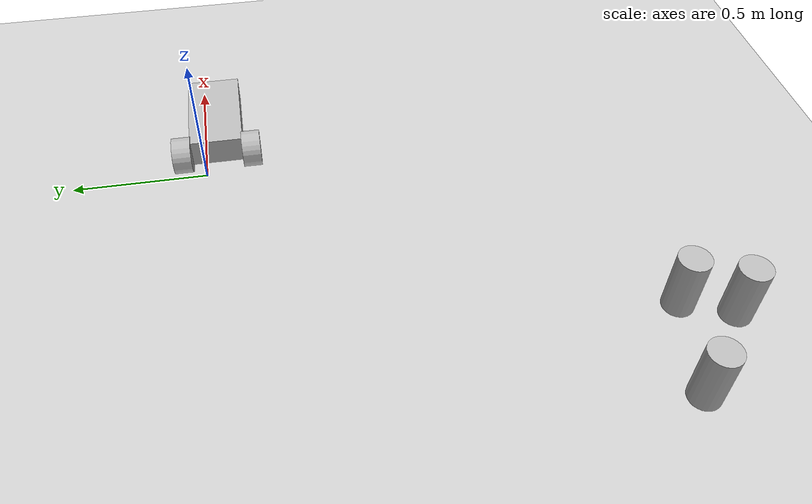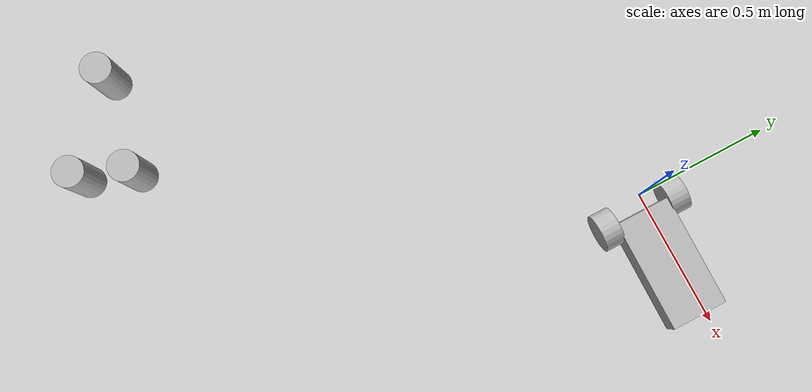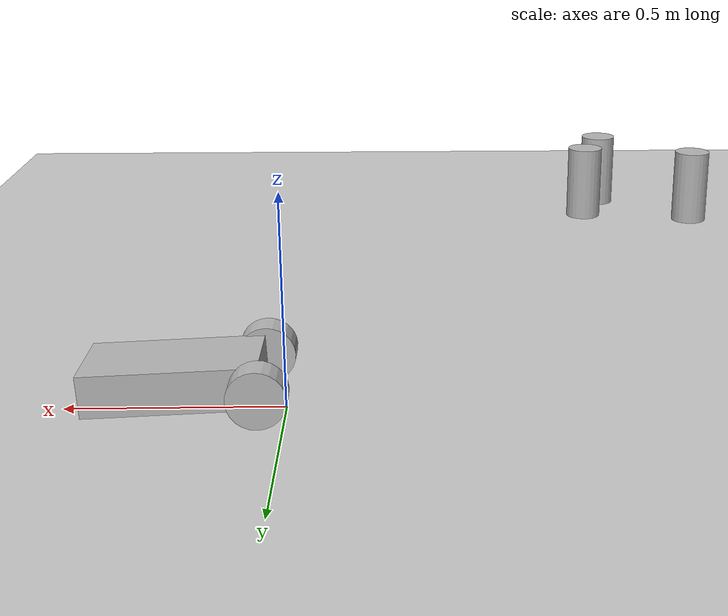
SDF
<sdf version="1.7">
 <world name="default">
  <light name="sun" type="directional">
   <pose>0 0 10 0 -0 0</pose>
   <diffuse>0.8 0.8 0.8 1</diffuse>
   <specular>0.2 0.2 0.2 1</specular>
   <attenuation>
    <range>1000</range>
    <constant>0.9</constant>
    <linear>0.01</linear>
    <quadratic>0.001</quadratic>
   </attenuation>
   <direction>-0.5 0.1 -0.9</direction>
   <spot><inner_angle>0</inner_angle><outer_angle>0</outer_angle><falloff>0</falloff></spot>
  </light>
  <model name="ground_plane">
   <static>1</static>
   <link name="link">
    <collision name="collision">
     <geometry><plane><normal>0 0 1</normal><size>100 100</size></plane></geometry>
     <surface>
      <contact><collide_bitmask>65535</collide_bitmask></contact>
      <friction><ode><mu>100</mu><mu2>50</mu2></ode></friction>
     </surface>
    </collision>
    <visual name="visual">
     <cast_shadows>0</cast_shadows>
     <geometry><plane><normal>0 0 1</normal><size>100 100</size></plane></geometry>
     <material>
      <script><uri>file://media/materials/scripts/gazebo.material</uri><name>Gazebo/Grey</name></script>
     </material>
    </visual>
   </link>
  </model>
  <gravity>0 0 -9.8</gravity>
  <magnetic_field>6e-06 2.3e-05 -4.2e-05</magnetic_field>
  <atmosphere type="adiabatic"/>
  <physics type="ode">
   <max_step_size>0.001</max_step_size>
   <real_time_factor>1</real_time_factor>
   <real_time_update_rate>1000</real_time_update_rate>
  </physics>
  <scene><ambient>0.4 0.4 0.4 1</ambient><background>0.7 0.7 0.7 1</background><shadows>1</shadows></scene>
  <audio><device>default</device></audio>
  <spherical_coordinates>
   <surface_model>EARTH_WGS84</surface_model>
   <latitude_deg>0</latitude_deg>
   <longitude_deg>0</longitude_deg>
   <elevation>0</elevation>
   <heading_deg>0</heading_deg>
  </spherical_coordinates>
  <model name="beer">
   <link name="link">
    <pose>0 0 0.115 0 -0 0</pose>
    <inertial>
     <mass>0.39</mass>
     <inertia><ixx>0.00058</ixx><ixy>0</ixy><ixz>0</ixz><iyy>0.00058</iyy><iyz>0</iyz><izz>0.00019</izz></inertia>
    </inertial>
    <collision name="collision">
     <geometry><cylinder><radius>0.055</radius><length>0.23</length></cylinder></geometry>
    </collision>
    <visual name="visual">
     <geometry><cylinder><radius>0.055</radius><length>0.23</length></cylinder></geometry>
     <material>
      <script>
       <uri>model://beer/materials/scripts</uri>
       <uri>model://beer/materials/textures</uri>
       <name>Beer/Diffuse</name>
      </script>
     </material>
    </visual>
   </link>
   <pose>-0.943178 -1.68607 -2e-06 1e-06 -0 -5e-06</pose>
  </model>
  <model name="beer_0">
   <link name="link">
    <pose>0 0 0.115 0 -0 0</pose>
    <inertial>
     <mass>0.39</mass>
     <inertia><ixx>0.00058</ixx><ixy>0</ixy><ixz>0</ixz><iyy>0.00058</iyy><iyz>0</iyz><izz>0.00019</izz></inertia>
    </inertial>
    <collision name="collision">
     <geometry><cylinder><radius>0.055</radius><length>0.23</length></cylinder></geometry>
    </collision>
    <visual name="visual">
     <geometry><cylinder><radius>0.055</radius><length>0.23</length></cylinder></geometry>
     <material>
      <script>
       <uri>model://beer/materials/scripts</uri>
       <uri>model://beer/materials/textures</uri>
       <name>Beer/Diffuse</name>
      </script>
     </material>
    </visual>
   </link>
   <pose>-1.22023 -1.45542 -7e-06 0 0 -4e-06</pose>
  </model>
  <model name="beer_1">
   <link name="link">
    <pose>0 0 0.115 0 -0 0</pose>
    <inertial>
     <mass>0.39</mass>
     <inertia><ixx>0.00058</ixx><ixy>0</ixy><ixz>0</ixz><iyy>0.00058</iyy><iyz>0</iyz><izz>0.00019</izz></inertia>
    </inertial>
    <collision name="collision">
     <geometry><cylinder><radius>0.055</radius><length>0.23</length></cylinder></geometry>
    </collision>
    <visual name="visual">
     <geometry><cylinder><radius>0.055</radius><length>0.23</length></cylinder></geometry>
     <material>
      <script>
       <uri>model://beer/materials/scripts</uri>
       <uri>model://beer/materials/textures</uri>
       <name>Beer/Diffuse</name>
      </script>
     </material>
    </visual>
   </link>
   <pose>-0.875927 -1.51604 -2e-06 1e-06 -0 -3e-06</pose>
  </model>
  <model name="my_robot">
   <static>0</static>
   <link name="chassis">
    <pose>0 0 0.2675 0 -0 0</pose>
    <collision name="collision"><geometry><box><size>0.1 0.2 0.4</size></box></geometry></collision>
    <visual name="visual"><geometry><box><size>0.1 0.2 0.4</size></box></geometry></visual>
    <inertial>
     <inertia><ixx>1</ixx><ixy>0</ixy><ixz>0</ixz><iyy>1</iyy><iyz>0</iyz><izz>1</izz></inertia>
     <mass>1</mass>
    </inertial>
   </link>
   <link name="left_wheel">
    <pose>0 0.13 0.0675 -0 1.5707 1.5707</pose>
    <collision name="collision">
     <geometry><cylinder><radius>0.0675</radius><length>0.069</length></cylinder></geometry>
    </collision>
    <visual name="visual">
     <geometry><cylinder><radius>0.0675</radius><length>0.069</length></cylinder></geometry>
    </visual>
    <inertial>
     <inertia><ixx>1</ixx><ixy>0</ixy><ixz>0</ixz><iyy>1</iyy><iyz>0</iyz><izz>1</izz></inertia>
     <mass>1</mass>
    </inertial>
   </link>
   <link name="right_wheel">
    <pose>0 -0.13 0.0675 -0 1.5707 1.5707</pose>
    <collision name="collision">
     <geometry><cylinder><radius>0.0675</radius><length>0.069</length></cylinder></geometry>
    </collision>
    <visual name="visual">
     <geometry><cylinder><radius>0.0675</radius><length>0.069</length></cylinder></geometry>
    </visual>
    <inertial>
     <inertia><ixx>1</ixx><ixy>0</ixy><ixz>0</ixz><iyy>1</iyy><iyz>0</iyz><izz>1</izz></inertia>
     <mass>1</mass>
    </inertial>
   </link>
   <joint name="left_wheel_hinge" type="revolute">
    <pose>0 0 -0.03 0 -0 0</pose>
    <child>left_wheel</child>
    <parent>chassis</parent>
    <axis>
     <xyz expressed_in="__model__">0 1 0</xyz>
     <limit><lower>-1e+16</lower><upper>1e+16</upper></limit>
     <dynamics><spring_reference>0</spring_reference><spring_stiffness>0</spring_stiffness></dynamics>
    </axis>
   </joint>
   <joint name="right_wheel_hinge" type="revolute">
    <pose>0 0 0.03 0 -0 0</pose>
    <child>right_wheel</child>
    <parent>chassis</parent>
    <axis>
     <xyz expressed_in="__model__">0 1 0</xyz>
     <limit><lower>-1e+16</lower><upper>1e+16</upper></limit>
     <dynamics><spring_reference>0</spring_reference><spring_stiffness>0</spring_stiffness></dynamics>
    </axis>
   </joint>
   <pose>-0.012473 -0.046236 0.070463 -3.14036 1.52692 -3.14143</pose>
  </model>
 </world>
</sdf>
